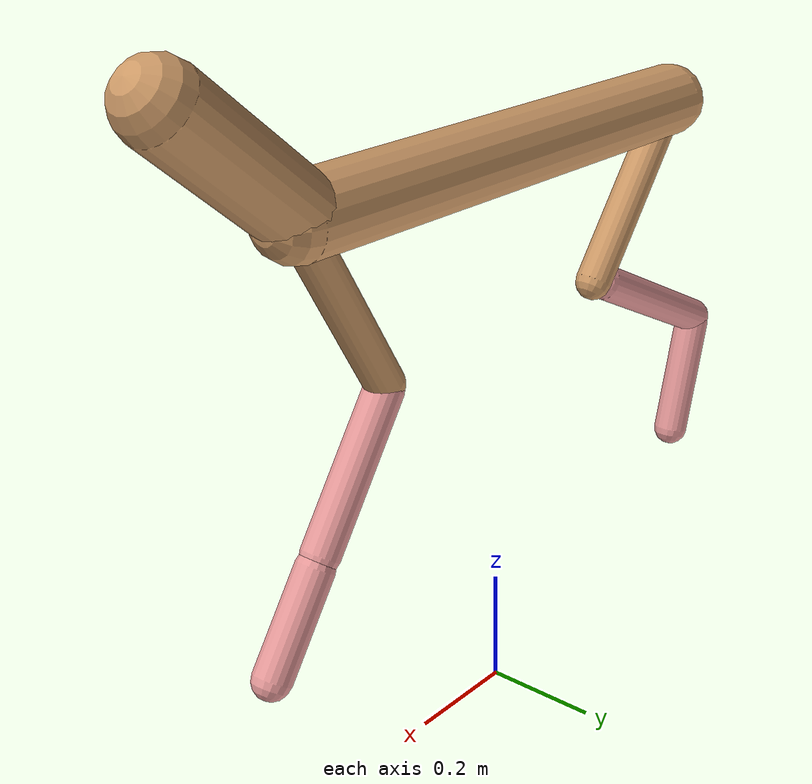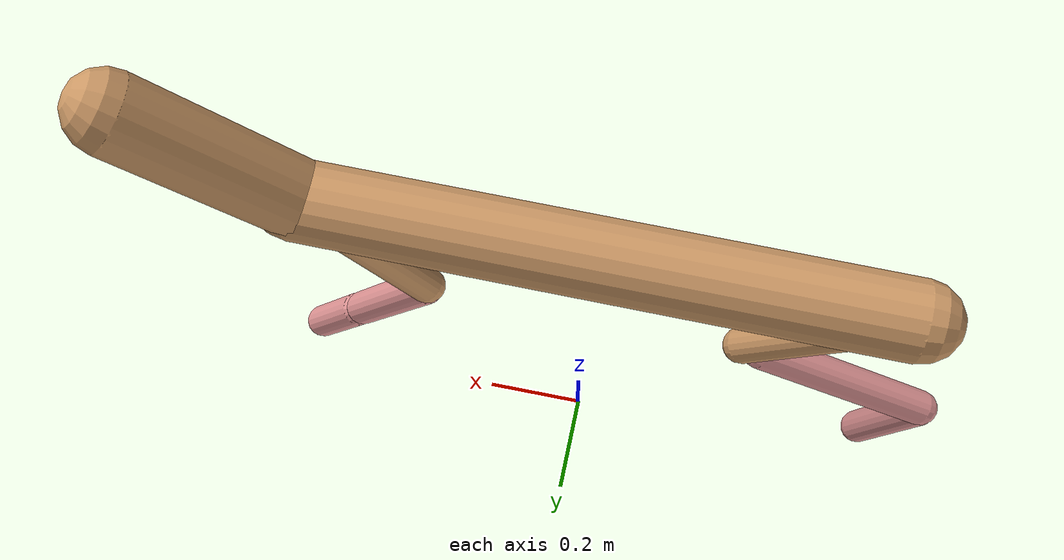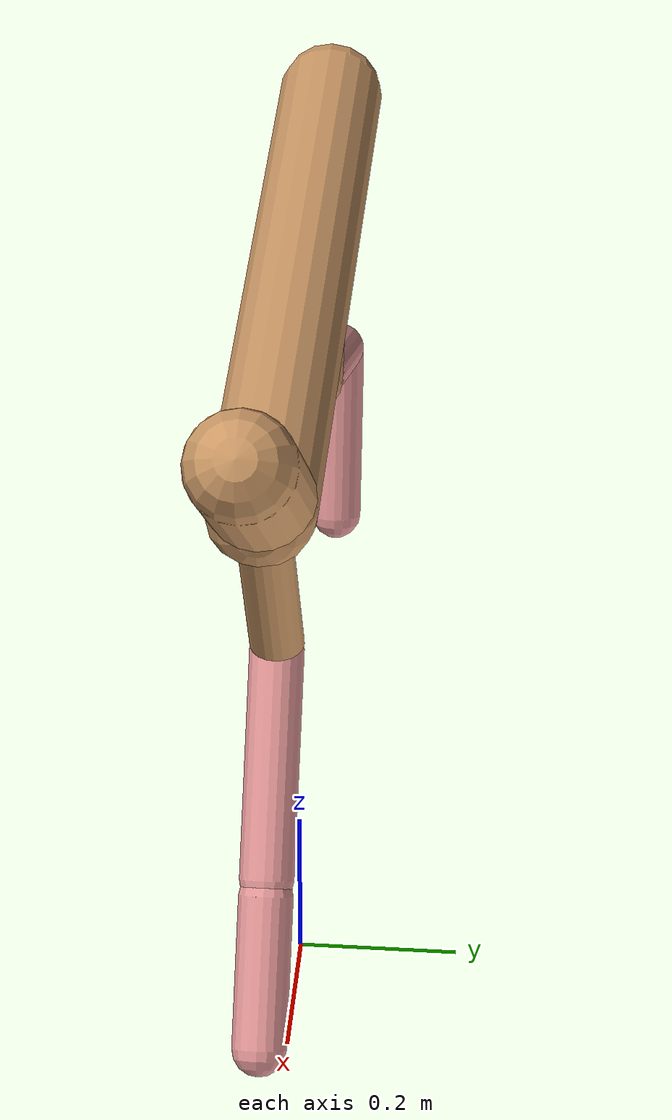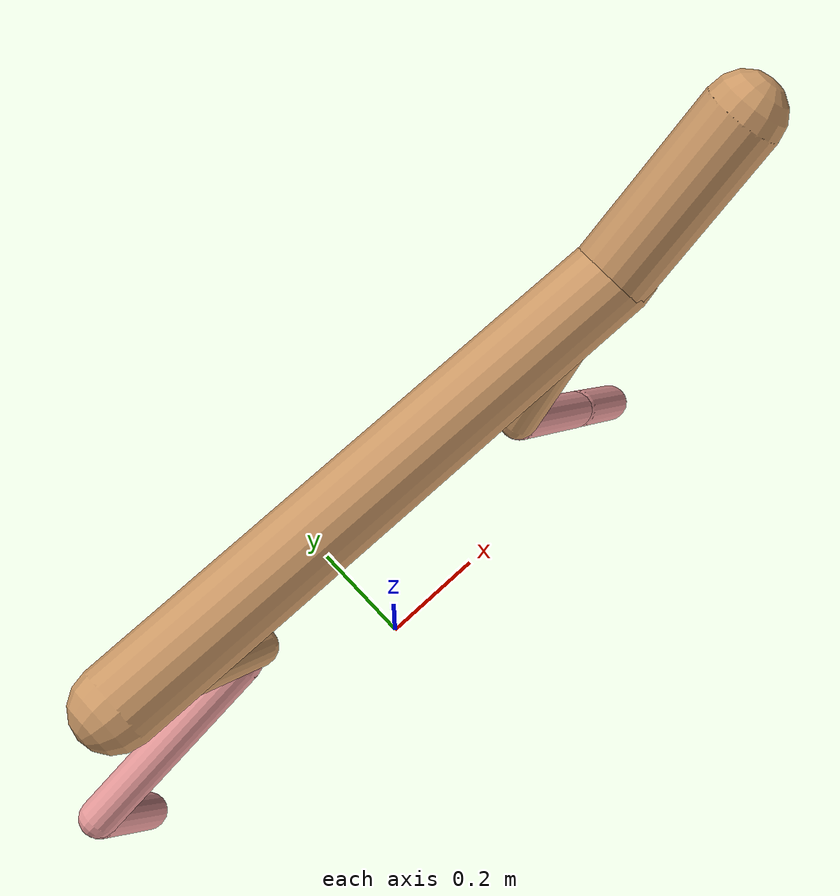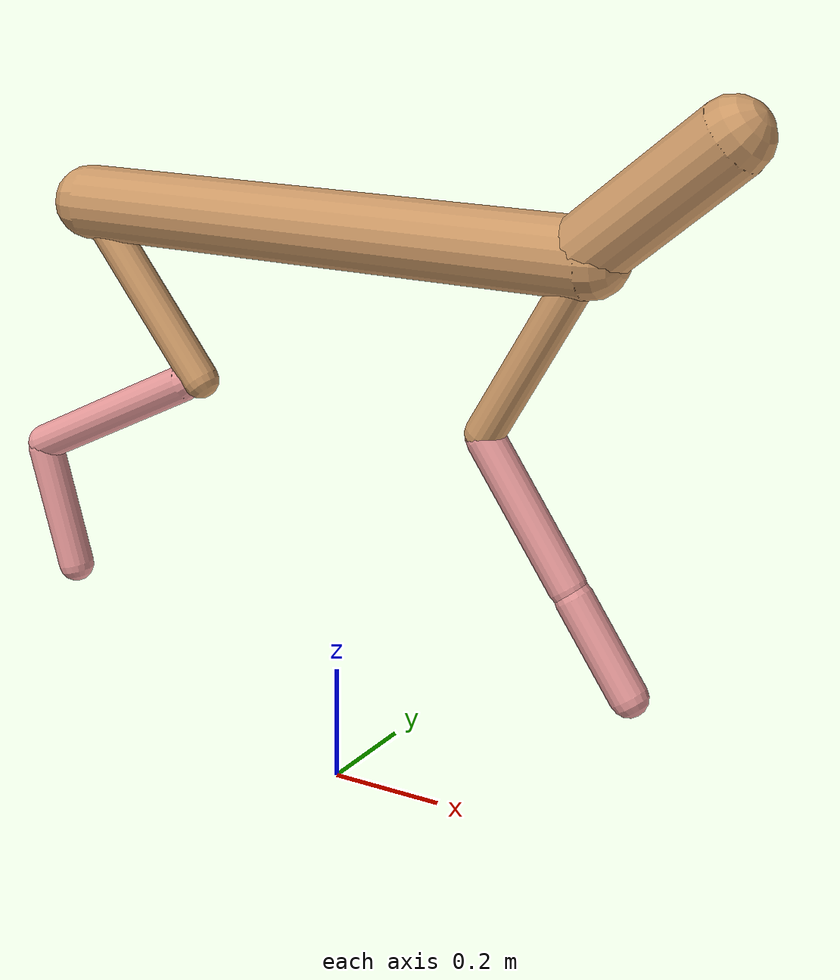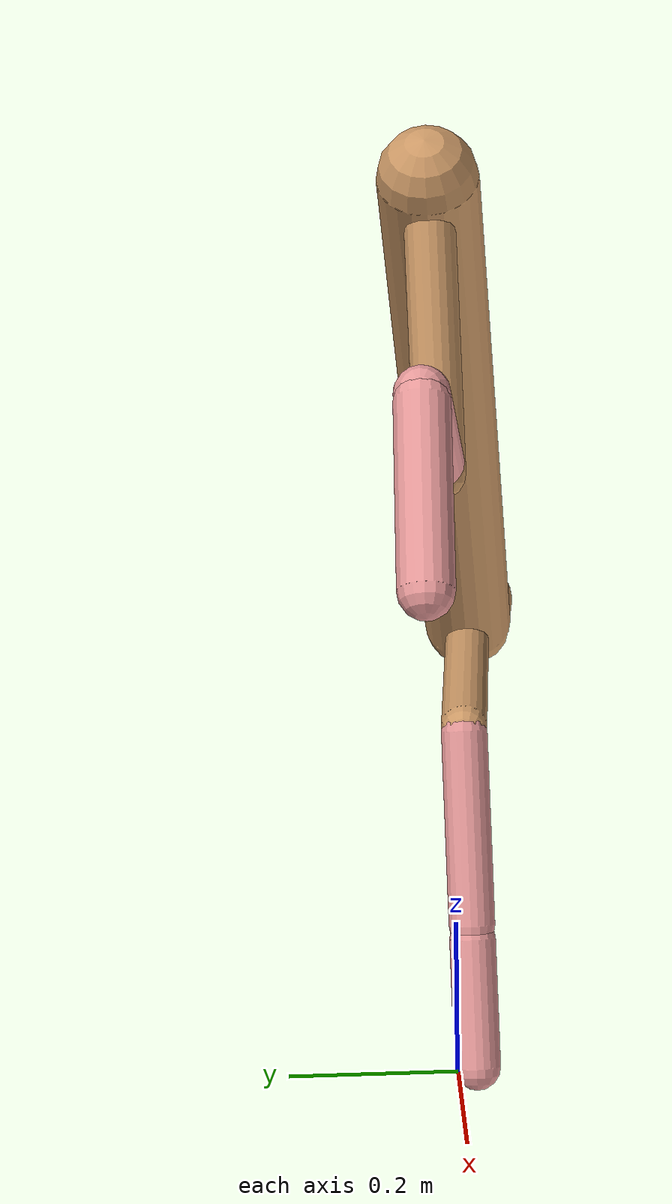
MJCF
<mujoco model="cheetah">
  <compiler angle="radian" coordinate="local" inertiafromgeom="true" settotalmass="14" />
  <default>
    <joint armature=".1" damping=".01" limited="true" solimplimit="0 .8 .03" solreflimit=".02 1" stiffness="8" />
    <geom conaffinity="0" condim="3" contype="1" friction="0.8 .1 .1" rgba="0.8 0.6 .4 1" solimp="0.0 0.8 0.01" solref="0.02 1" />
    <motor ctrllimited="true" ctrlrange="-1 1" />
  </default>
  <size nstack="300000" nuser_geom="1" />
  <option gravity="0 0 -9.81" timestep="0.01" />
  <worldbody>
    <body name="torso" pos="0.0 0.0 0.9683802887676938">
      <joint armature="0" axis="1 0 0" damping="0" limited="false" name="ignorex" pos="0 0 0" stiffness="0" type="slide" />
      <joint armature="0" axis="0 0 1" damping="0" limited="false" name="ignorez" pos="0 0 0" stiffness="0" type="slide" />
      <joint armature="0" axis="0 1 0" damping="0" limited="false" name="ignorey" pos="0 0 0" stiffness="0" type="hinge" />
      <geom fromto="-0.5 0.0 0.0 0.45062760713711175 0.0 0.0" name="torso" size="0.06406113007152775" type="capsule" />
      <geom axisangle="0 1 0 .87" name="head" pos="0.5506276071371118 0.0 0.1" size="0.06269831514273441 0.15" type="capsule" />

      <body name="bthigh" pos="-.5 0 0">
        <joint axis="0 1 0" damping="6" name="bthigh" pos="0 0 0" range="-.52 1.05" stiffness="240" type="hinge" />
        <geom axisangle="0 1 0 -3.8" name="bthigh" pos="0.11708835091793607 0.0 -0.15221485619331687" size="0.0322 0.17302697937317318" type="capsule" />
        <body name="bshin" pos="0.19417670183587213 0.0 -0.29442971238663374">
          <joint axis="0 1 0" damping="4.5" name="bshin" pos="0 0 0" range="-.785 .785" stiffness="180" type="hinge" />
          <geom axisangle="0 1 0 -2.03" name="bshin" pos="-0.1659325094134068 0.0 -0.0829662547067034" rgba="0.9 0.6 0.6 1" size="0.0322 0.17899342693776535" type="capsule" />
          <body name="bfoot" pos="-0.3318650188268136 0.0 -0.1659325094134068">
            <joint axis="0 1 0" damping="3" name="bfoot" pos="0 0 0" range="-.4 .785" stiffness="120" type="hinge" />
            <geom axisangle="0 1 0 -.27" name="bfoot" pos="0.035368452689620654 0.0 -0.11435799702977345" rgba="0.9 0.6 0.6 1" size="0.0322 0.11216921421433296" type="capsule" />
            <inertial mass="10" />
          </body>
        </body>
      </body>
      <body name="fthigh" pos="0.4506276071371118 0.0 0.0">
        <joint axis="0 1 0" damping="4.5" name="fthigh" pos="0 0 0" range="-1.5 0.8" stiffness="180" type="hinge" />
        <geom axisangle="0 1 0 .52" name="fthigh" pos="-0.08881324668110165 0.0 -0.15225128002474567" size="0.0322 0.1703374251109867" type="capsule" />
        <body name="fshin" pos="-0.1776264933622033 0.0 -0.30450256004949133">
          <joint axis="0 1 0" damping="3" name="fshin" pos="0 0 0" range="-1.2 1.1" stiffness="120" type="hinge" />
          <geom axisangle="0 1 0 -.6" name="fshin" pos="0.08242282127052263 0.0 -0.11412390637456979" rgba="0.9 0.6 0.6 1" size="0.0322 0.13575764708093677" type="capsule" />
          <body name="ffoot" pos="0.16484564254104525 0.0 -0.22824781274913958">
            <joint axis="0 1 0" damping="1.5" name="ffoot" pos="0 0 0" range="-3.1 -0.3" stiffness="60" type="hinge" />
            <geom axisangle="0 1 0 -.6" name="ffoot" pos="0.05562657687835016 0.0 -0.08653023069965582" rgba="0.9 0.6 0.6 1" size="0.0322 0.08965127637420353" type="capsule" />
            <inertial mass="10" />
          </body>
        </body>
      </body>
    </body>
  </worldbody>
  <actuator>
    <motor gear="120" joint="bthigh" name="bthigh" />
    <motor gear="90" joint="bshin" name="bshin" />
    <motor gear="60" joint="bfoot" name="bfoot" />
    <motor gear="120" joint="fthigh" name="fthigh" />
    <motor gear="60" joint="fshin" name="fshin" />
    <motor gear="30" joint="ffoot" name="ffoot" />
  </actuator>
</mujoco>
